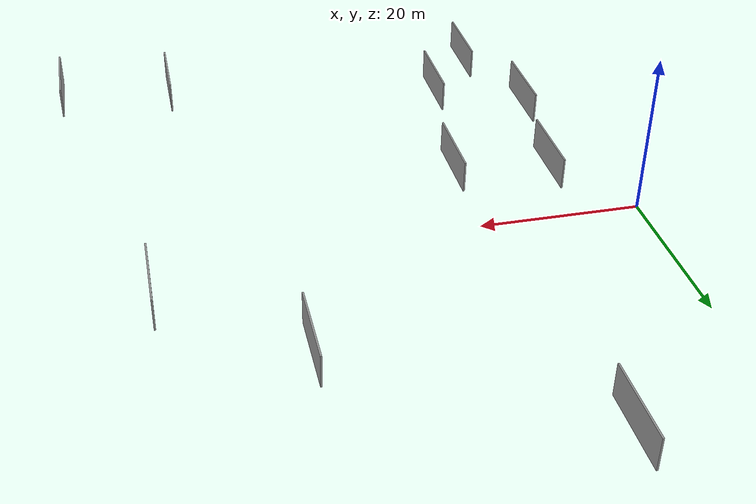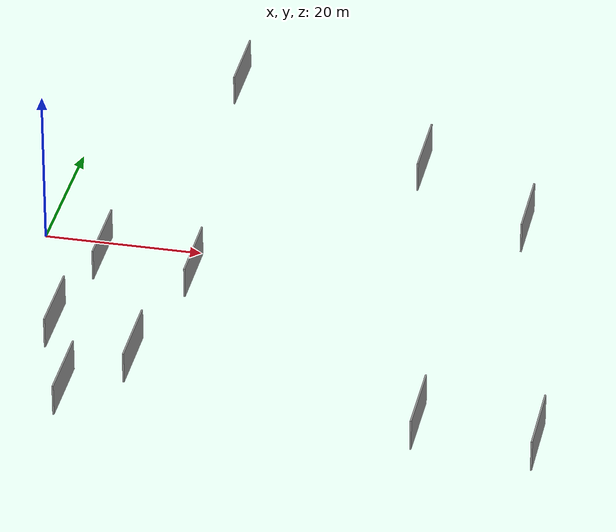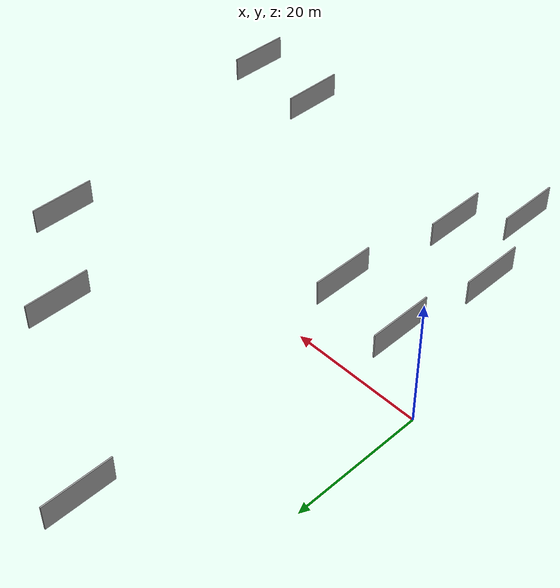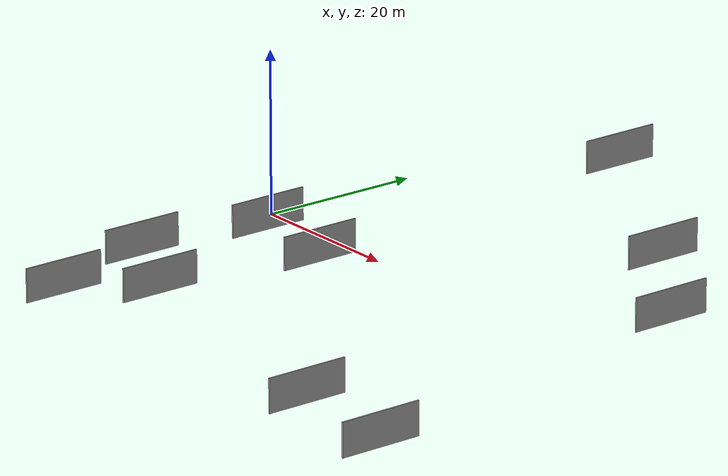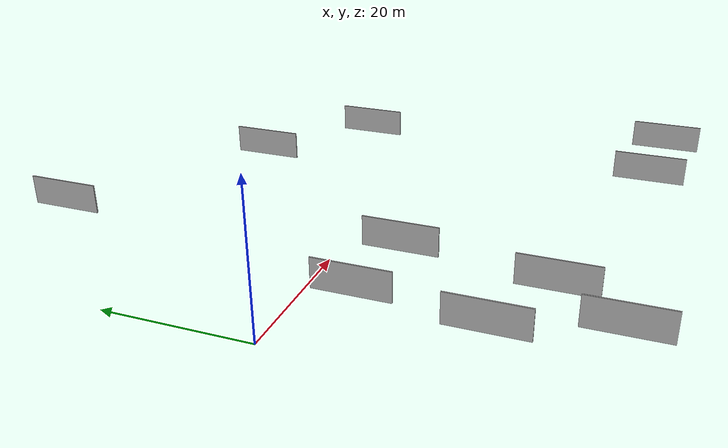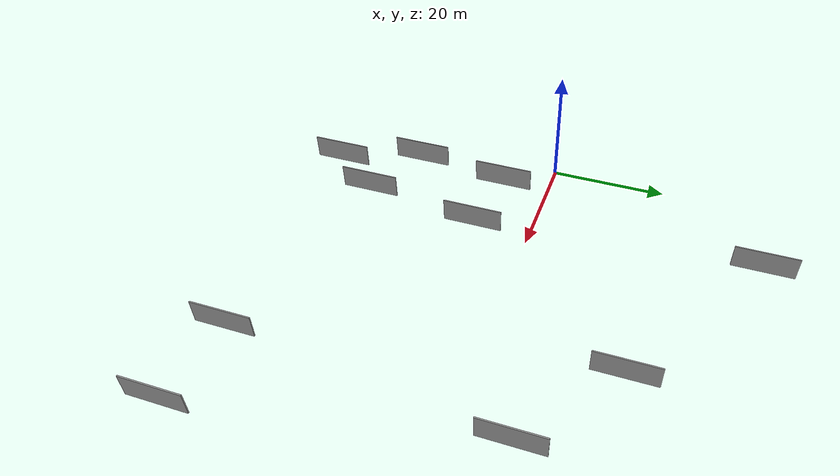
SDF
<sdf version="1.6">
 <world name="default">
  <scene>
   <sky><clouds><speed>12</speed></clouds></sky>
   <ambient>0.4 0.4 0.4 1</ambient>
   <background>0.7 0.7 0.7 1</background>
   <shadows>1</shadows>
  </scene>
  <gravity>0 0 -9.8066</gravity>
  <magnetic_field>6e-06 2.3e-05 -4.2e-05</magnetic_field>
  <physics default="0" name="default_physics" type="ode">
   <ode>
    <solver>
     <type>quick</type>
     <iters>10</iters>
     <sor>1.0</sor>
     <use_dynamic_moi_rescaling>0</use_dynamic_moi_rescaling>
    </solver>
    <constraints>
     <cfm>0</cfm>
     <erp>0.2</erp>
     <contact_max_correcting_vel>100</contact_max_correcting_vel>
     <contact_surface_layer>0.001</contact_surface_layer>
    </constraints>
   </ode>
   <max_step_size>0.004</max_step_size>
   <real_time_factor>1</real_time_factor>
   <real_time_update_rate>250</real_time_update_rate>
  </physics>
  <light name="sun" type="directional">
   <pose>0 0 10 0 0 0</pose>
   <diffuse>0.8 0.8 0.8 1</diffuse>
   <specular>0.2 0.2 0.2 1</specular>
   <attenuation>
    <range>1000</range>
    <constant>0.9</constant>
    <linear>0.01</linear>
    <quadratic>0.001</quadratic>
   </attenuation>
   <direction>-0.5 0.1 -0.9</direction>
  </light>
  <model name="grey_wall_1">
   <static>1</static>
   <pose>44.3597 21.2463 2.5 0.000000 0.000000 1.570796</pose>
   <link name="link">
    <pose>0 0 2.00 0 0 0</pose>
    <collision name="collision"><geometry><box><size>10.00 0.2 4.00</size></box></geometry></collision>
    <visual name="visual">
     <cast_shadows>0</cast_shadows>
     <geometry><box><size>10.00 0.2 4.00</size></box></geometry>
     <material>
      <script>
       <uri>model://grey_wall/materials/scripts</uri>
       <uri>model://grey_wall/materials/textures</uri>
       <name>vrc/grey_wall</name>
      </script>
     </material>
    </visual>
   </link>
  </model>
  <model name="grey_wall_2">
   <static>1</static>
   <pose>9.1196 -7.4161 2.5 0.000000 0.000000 1.570796</pose>
   <link name="link">
    <pose>0 0 2.00 0 0 0</pose>
    <collision name="collision"><geometry><box><size>10.00 0.2 4.00</size></box></geometry></collision>
    <visual name="visual">
     <cast_shadows>0</cast_shadows>
     <geometry><box><size>10.00 0.2 4.00</size></box></geometry>
     <material>
      <script>
       <uri>model://grey_wall/materials/scripts</uri>
       <uri>model://grey_wall/materials/textures</uri>
       <name>vrc/grey_wall</name>
      </script>
     </material>
    </visual>
   </link>
  </model>
  <model name="grey_wall_3">
   <static>1</static>
   <pose>68.3887 -37.6802 2.5 0.000000 0.000000 1.570796</pose>
   <link name="link">
    <pose>0 0 2.00 0 0 0</pose>
    <collision name="collision"><geometry><box><size>10.00 0.2 4.00</size></box></geometry></collision>
    <visual name="visual">
     <cast_shadows>0</cast_shadows>
     <geometry><box><size>10.00 0.2 4.00</size></box></geometry>
     <material>
      <script>
       <uri>model://grey_wall/materials/scripts</uri>
       <uri>model://grey_wall/materials/textures</uri>
       <name>vrc/grey_wall</name>
      </script>
     </material>
    </visual>
   </link>
  </model>
  <model name="grey_wall_4">
   <static>1</static>
   <pose>11.5752 -37.4651 2.5 0.000000 0.000000 1.570796</pose>
   <link name="link">
    <pose>0 0 2.00 0 0 0</pose>
    <collision name="collision"><geometry><box><size>10.00 0.2 4.00</size></box></geometry></collision>
    <visual name="visual">
     <cast_shadows>0</cast_shadows>
     <geometry><box><size>10.00 0.2 4.00</size></box></geometry>
     <material>
      <script>
       <uri>model://grey_wall/materials/scripts</uri>
       <uri>model://grey_wall/materials/textures</uri>
       <name>vrc/grey_wall</name>
      </script>
     </material>
    </visual>
   </link>
  </model>
  <model name="grey_wall_5">
   <static>1</static>
   <pose>18.0618 -29.0795 2.5 0.000000 0.000000 1.570796</pose>
   <link name="link">
    <pose>0 0 2.00 0 0 0</pose>
    <collision name="collision"><geometry><box><size>10.00 0.2 4.00</size></box></geometry></collision>
    <visual name="visual">
     <cast_shadows>0</cast_shadows>
     <geometry><box><size>10.00 0.2 4.00</size></box></geometry>
     <material>
      <script>
       <uri>model://grey_wall/materials/scripts</uri>
       <uri>model://grey_wall/materials/textures</uri>
       <name>vrc/grey_wall</name>
      </script>
     </material>
    </visual>
   </link>
  </model>
  <model name="grey_wall_6">
   <static>1</static>
   <pose>53.9749 -36.2297 2.5 0.000000 0.000000 1.570796</pose>
   <link name="link">
    <pose>0 0 2.00 0 0 0</pose>
    <collision name="collision"><geometry><box><size>10.00 0.2 4.00</size></box></geometry></collision>
    <visual name="visual">
     <cast_shadows>0</cast_shadows>
     <geometry><box><size>10.00 0.2 4.00</size></box></geometry>
     <material>
      <script>
       <uri>model://grey_wall/materials/scripts</uri>
       <uri>model://grey_wall/materials/textures</uri>
       <name>vrc/grey_wall</name>
      </script>
     </material>
    </visual>
   </link>
  </model>
  <model name="grey_wall_7">
   <static>1</static>
   <pose>17.0856 37.9927 2.5 0.000000 0.000000 1.570796</pose>
   <link name="link">
    <pose>0 0 2.00 0 0 0</pose>
    <collision name="collision"><geometry><box><size>10.00 0.2 4.00</size></box></geometry></collision>
    <visual name="visual">
     <cast_shadows>0</cast_shadows>
     <geometry><box><size>10.00 0.2 4.00</size></box></geometry>
     <material>
      <script>
       <uri>model://grey_wall/materials/scripts</uri>
       <uri>model://grey_wall/materials/textures</uri>
       <name>vrc/grey_wall</name>
      </script>
     </material>
    </visual>
   </link>
  </model>
  <model name="grey_wall_8">
   <static>1</static>
   <pose>21.0133 -9.1198 2.5 0.000000 0.000000 1.570796</pose>
   <link name="link">
    <pose>0 0 2.00 0 0 0</pose>
    <collision name="collision"><geometry><box><size>10.00 0.2 4.00</size></box></geometry></collision>
    <visual name="visual">
     <cast_shadows>0</cast_shadows>
     <geometry><box><size>10.00 0.2 4.00</size></box></geometry>
     <material>
      <script>
       <uri>model://grey_wall/materials/scripts</uri>
       <uri>model://grey_wall/materials/textures</uri>
       <name>vrc/grey_wall</name>
      </script>
     </material>
    </visual>
   </link>
  </model>
  <model name="grey_wall_9">
   <static>1</static>
   <pose>7.0580 -23.5285 2.5 0.000000 0.000000 1.570796</pose>
   <link name="link">
    <pose>0 0 2.00 0 0 0</pose>
    <collision name="collision"><geometry><box><size>10.00 0.2 4.00</size></box></geometry></collision>
    <visual name="visual">
     <cast_shadows>0</cast_shadows>
     <geometry><box><size>10.00 0.2 4.00</size></box></geometry>
     <material>
      <script>
       <uri>model://grey_wall/materials/scripts</uri>
       <uri>model://grey_wall/materials/textures</uri>
       <name>vrc/grey_wall</name>
      </script>
     </material>
    </visual>
   </link>
  </model>
  <model name="grey_wall_10">
   <static>1</static>
   <pose>59.5371 9.3769 2.5 0.000000 0.000000 1.570796</pose>
   <link name="link">
    <pose>0 0 2.00 0 0 0</pose>
    <collision name="collision"><geometry><box><size>10.00 0.2 4.00</size></box></geometry></collision>
    <visual name="visual">
     <cast_shadows>0</cast_shadows>
     <geometry><box><size>10.00 0.2 4.00</size></box></geometry>
     <material>
      <script>
       <uri>model://grey_wall/materials/scripts</uri>
       <uri>model://grey_wall/materials/textures</uri>
       <name>vrc/grey_wall</name>
      </script>
     </material>
    </visual>
   </link>
  </model>
 </world>
</sdf>
